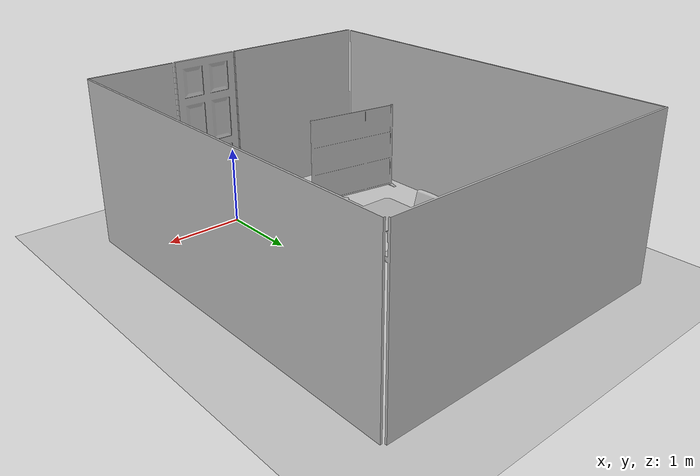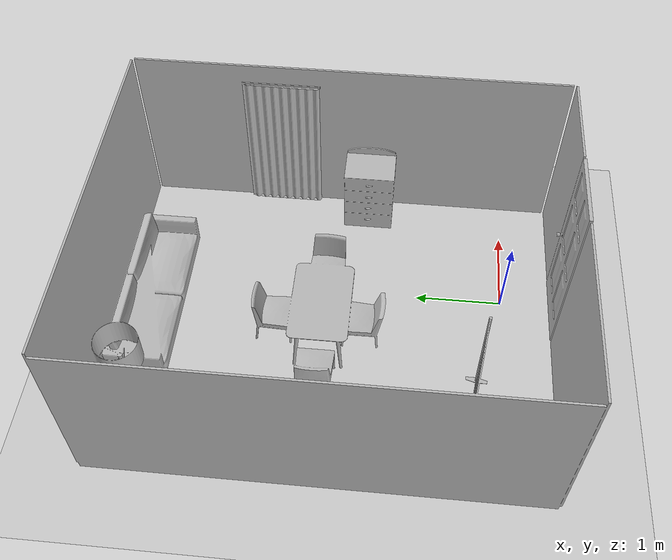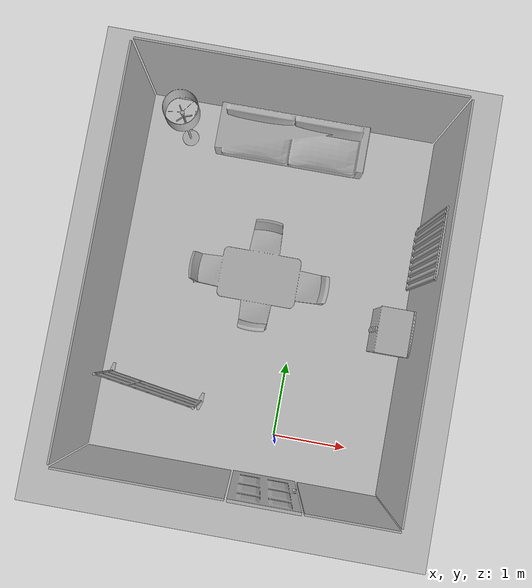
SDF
<sdf version='1.6'>
  <world name='default'>
    <!-- A global light source -->
    <include>
      <uri>model://sun</uri>
    </include>

    <!-- A ground plane -->
    <include>
      <uri>model://ground_plane</uri>
      <pose>2 2 0 0 0 0</pose>
    </include>

    <physics type="ode">
      <real_time_update_rate>1000.0</real_time_update_rate>
      <max_step_size>0.001</max_step_size>
      <real_time_factor>1</real_time_factor>
      <ode>
        <solver>
          <type>quick</type>
          <iters>150</iters>
          <precon_iters>0</precon_iters>
          <sor>1.400000</sor>
          <use_dynamic_moi_rescaling>1</use_dynamic_moi_rescaling>
        </solver>
        <constraints>
          <cfm>0.00001</cfm>
          <erp>0.2</erp>
          <contact_max_correcting_vel>2000.000000</contact_max_correcting_vel>
          <contact_surface_layer>0.01000</contact_surface_layer>
        </constraints>
      </ode>
    </physics>

    <!-- Load world -->
    <include>
      <uri>model://room</uri>
      <pose>0 0 0 1.57 0 0</pose>
    </include>

    <scene>
      <ambient>0.4 0.4 0.4 1</ambient>
      <background>0.7 0.7 0.7 1</background>
      <shadows>true</shadows>
    </scene>

    <gui fullscreen='0'>
      <camera name='user_camera'>
        <pose>0.0 0.0 17.0 0 1.5708 0</pose>
        <view_controller>orbit</view_controller>
      </camera>
    </gui>
  </world>
</sdf>

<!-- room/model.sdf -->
<sdf version="1.5">
    <model name="room">
        <static>1</static>
        <link name="link">
            <collision name='collision1'>
                <geometry>
                    <mesh>
                        <uri>model://room/meshes/IEC_room.obj</uri>
                        <scale>0.001 0.001 0.001</scale>
                    </mesh>
                </geometry>
                <max_contacts>10</max_contacts>
                <surface>
                    <bounce/>
                    <friction>
                    <ode/>
                    </friction>
                    <contact>
                    <ode/>
                    </contact>
                </surface>
            </collision>

            <visual name='visual1'>
                <geometry>
                    <mesh>
                        <uri>model://room/meshes/IEC_room.obj</uri>
                        <scale>0.001 0.001 0.001</scale>
                    </mesh>
                </geometry>
            </visual>
        </link>
    </model>
</sdf>
